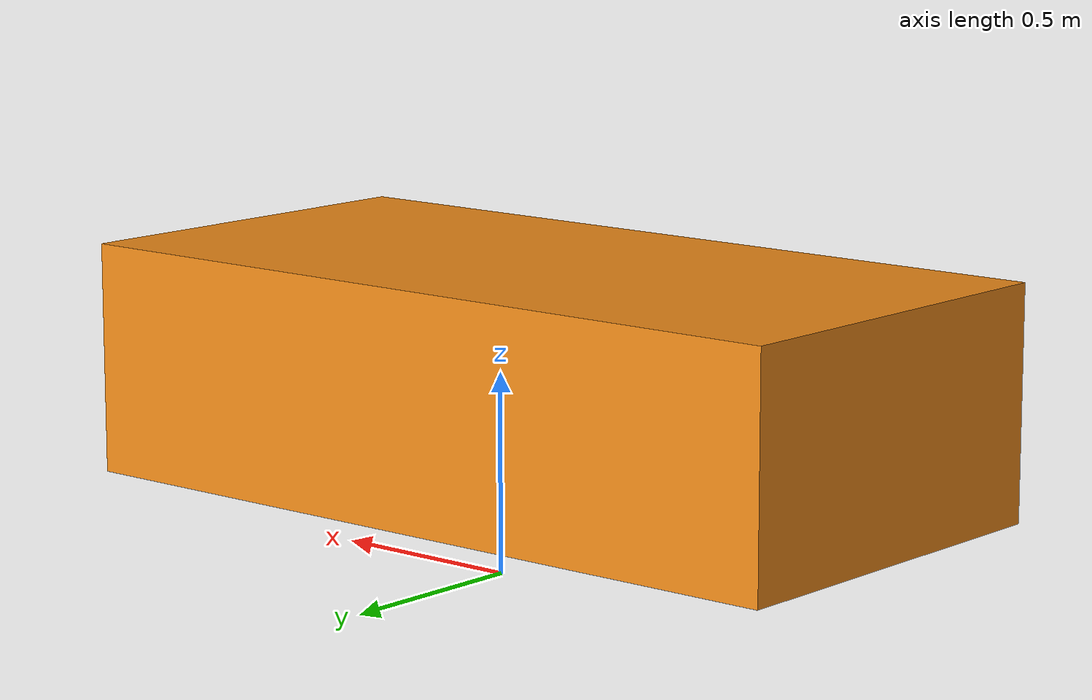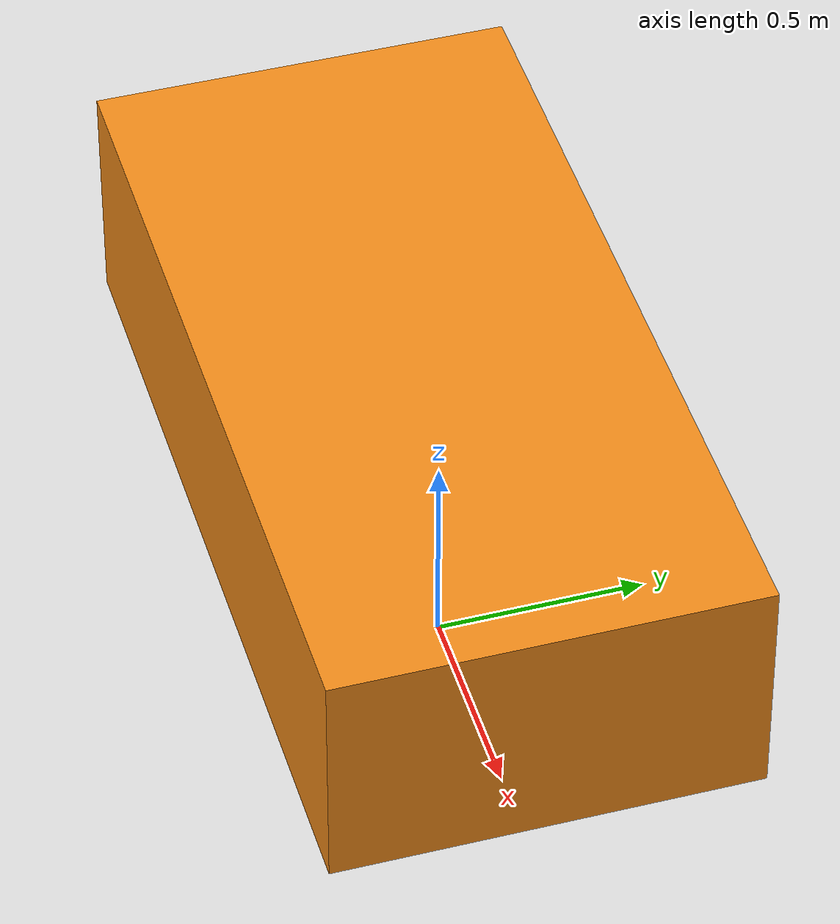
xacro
<robot name="bot"
    xmlns:xacro="http://www.ros.org/wiki/xacro"
    xmlns:xi="http://www.w3.org/2001/XInclude">

    <xacro:property name="chassis_len" value=".19"/>
    <xacro:property name="chassis_width" value=".19"/>
    <xacro:property name="chassis_height" value="0.070"/>
    <link name="base_link">
        <collision>
            <origin xyz="-0.151427 -0 0.5" rpy="0 0 0"/>
            <geometry>
                <box size="2.01142 1 0.568726"/>
            </geometry>
        </collision>

        <visual>
            <origin xyz="-0.151427 -0 0.5" rpy="0 0 0"/>
            <geometry>
                <box size="2.01142 1 0.568726"/>
            </geometry>
            <material name="orange"/>
        </visual>

        <inertial>
            <origin xyz="-0.151427 -0 0.5" rpy="0 0 0"/>
            <mass value="1.14395"/>
            <inertia ixx="0.126164" ixy="0.0" ixz="0.0" iyy="0.416519" iyz="0.0" izz="0.481014"/>
        </inertial>
    </link>

</robot>
